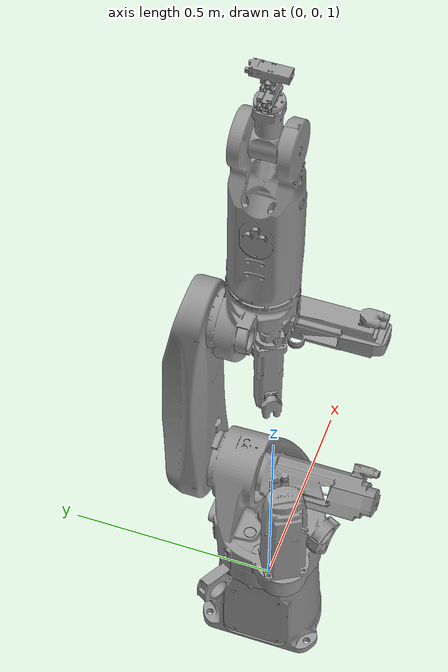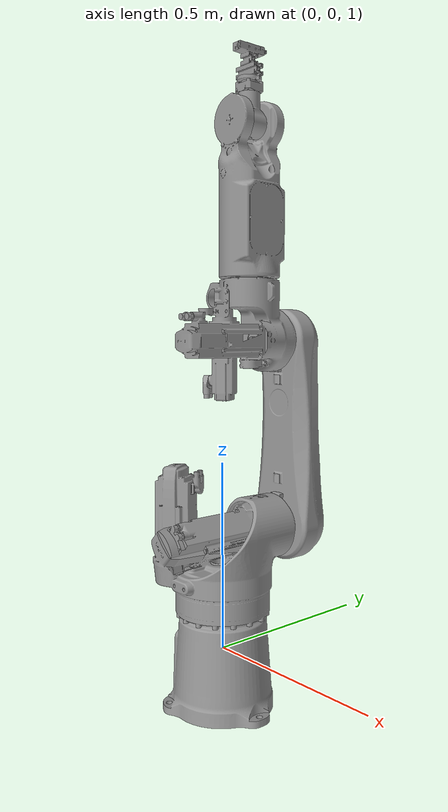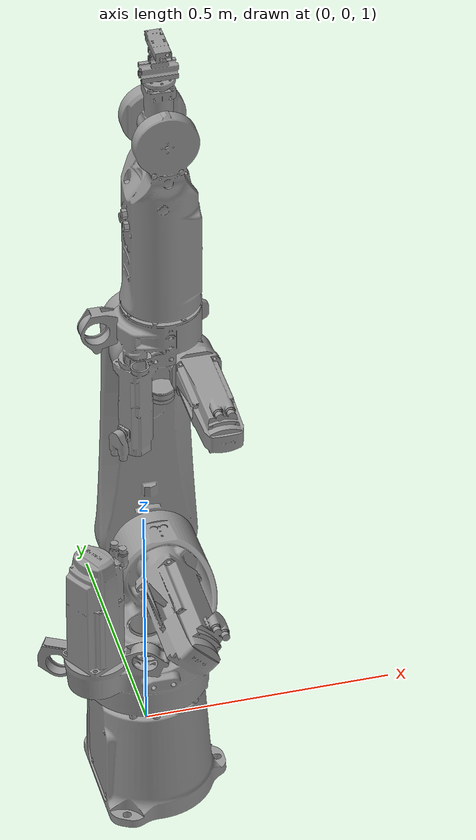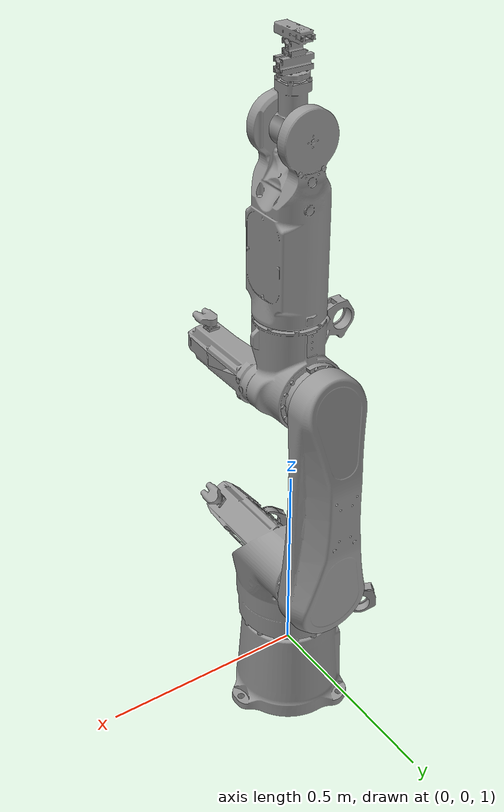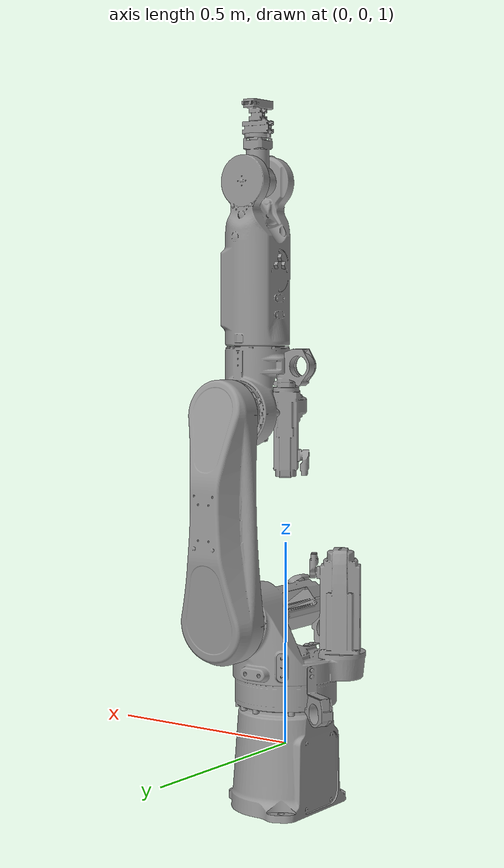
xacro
<?xml version="1.0" encoding="UTF-8"?>
<robot xmlns:xacro="http://wiki.ros.org/xacro" name="orba6">

  <!-- set prefix if multiple robots are used -->
  <xacro:arg name="prefix" default=""/>

  <xacro:arg name="hardware" default="mock"/>  <!-- mock, motion_app, motor_direct -->

  <xacro:include filename="$(find pssbl_robot_descriptions)/urdf/orba6_1215/orba6_1215_macro.xacro"/>
  <xacro:include filename="$(find pssbl_robot_descriptions)/urdf/orba6_1215/orba6_1215_gripper_macro.xacro"/>
  <xacro:include filename="$(find pssbl_robot_descriptions)/urdf/orba6_1215/orba6_macro.ros2_control.xacro"/>
  <xacro:include filename="$(find pssbl_robot_descriptions)/urdf/gripper_macro.ros2_control.xacro"/>

  <!-- create link fixed to the "world" -->
  <link name="world"/>

  <xacro:orba6_1215 prefix="$(arg prefix)" parent="world">
    <origin xyz="0 0 0.845" rpy="0 0 0"/>
  </xacro:orba6_1215>

  <xacro:orba6_ros2_control
    name="orba6"
    prefix="$(arg prefix)"
    hardware="$(arg hardware)"
  />
  <xacro:orba6_ios_ros2_control
    name="orba6_ios"
    prefix="$(arg prefix)"
    hardware="$(arg hardware)"
  />

  <xacro:orba6_1215_gripper prefix="" parent="$(arg prefix)flange">
    <origin xyz="0 0 0" rpy="0 0 0"/>
  </xacro:orba6_1215_gripper>

  <xacro:gripper_ros2_control
    name="orba6_gripper"
    prefix=""
    mock="$(eval hardware == 'mock')"
  />

</robot>

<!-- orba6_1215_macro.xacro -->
<robot xmlns:xacro="http://wiki.ros.org/xacro">

  <xacro:include filename="$(find pssbl_robot_descriptions)/urdf/common/inertials.xacro"/>
  <xacro:include filename="$(find pssbl_robot_descriptions)/urdf/common/materials.xacro"/>

  <xacro:macro name="orba6_1215" params="prefix parent *origin">
    <!-- LINKS -->
    <!-- base link -->
    <link name="${prefix}base_link">
      <!-- Default inertial for Gazebo - copy and edit block from 'common.xacro'
           to get more realistic behavior -->
      <xacro:default_inertial/>
      <visual>
        <origin xyz="0 0 0" rpy="0 0 0"/>
        <geometry>
          <mesh filename="package://pssbl_robot_descriptions/meshes/orba6_1215/visual/base_link.stl" />
        </geometry>
        <material name="grey"/>
      </visual>
      <collision>
        <origin xyz="0 0 0" rpy="0 0 0"/>
        <geometry>
          <mesh filename="package://pssbl_robot_descriptions/meshes/orba6_1215/collision/base_link.stl" />
        </geometry>
      </collision>
    </link>

    <!-- link 1 -->
    <link name="${prefix}link1">
      <!-- Default inertial for Gazebo - copy and edit block from 'common.xacro'
           to get more realistic behavior -->
      <xacro:default_inertial/>
      <visual>
        <origin xyz="0 0 0" rpy="0 0 0"/>
        <geometry>
          <mesh filename="package://pssbl_robot_descriptions/meshes/orba6_1215/visual/link1.stl" />
        </geometry>
        <material name="grey"/>
      </visual>
      <collision>
        <origin xyz="0 0 0" rpy="0 0 0"/>
        <geometry>
          <mesh filename="package://pssbl_robot_descriptions/meshes/orba6_1215/collision/link1.stl" />
        </geometry>
        <material name="grey"/>
      </collision>
    </link>

    <!-- link 2 -->
    <link name="${prefix}link2">
      <!-- Default inertial for Gazebo - copy and edit block from 'common.xacro'
           to get more realistic behavior-->
      <xacro:default_inertial/>
      <visual>
        <origin xyz="0 0 0" rpy="0 0 0"/>
        <geometry>
          <mesh filename="package://pssbl_robot_descriptions/meshes/orba6_1215/visual/link2.stl" />
        </geometry>
        <material name="grey"/>
      </visual>
      <collision>
        <origin xyz="0 0 0" rpy="0 0 0"/>
        <geometry>
          <mesh filename="package://pssbl_robot_descriptions/meshes/orba6_1215/collision/link2.stl" />
        </geometry>
      </collision>
    </link>

    <!-- link 3 -->
    <link name="${prefix}link3">
      <!-- Default inertial for Gazebo - copy and edit block from 'common.xacro'
           to get more realistic behavior-->
      <xacro:default_inertial/>
      <visual>
        <origin xyz="0 0 0" rpy="0 0 0"/>
        <geometry>
          <mesh filename="package://pssbl_robot_descriptions/meshes/orba6_1215/visual/link3.stl" />
        </geometry>
        <material name="grey"/>
      </visual>
      <collision>
        <origin xyz="0 0 0" rpy="0 0 0"/>
        <geometry>
          <mesh filename="package://pssbl_robot_descriptions/meshes/orba6_1215/collision/link3.stl" />
        </geometry>
      </collision>
    </link>

    <!-- link 4 -->
    <link name="${prefix}link4">
      <!-- Default inertial for Gazebo - copy and edit block from 'common.xacro'
           to get more realistic behavior-->
      <xacro:default_inertial/>
      <visual>
        <origin xyz="-0.39 0 0" rpy="0 0 0"/>
        <geometry>
          <mesh filename="package://pssbl_robot_descriptions/meshes/orba6_1215/visual/link4.stl" />
        </geometry>
        <material name="grey"/>
      </visual>
      <collision>
        <origin xyz="-0.39 0 0" rpy="0 0 0"/>
        <geometry>
          <mesh filename="package://pssbl_robot_descriptions/meshes/orba6_1215/collision/link4.stl" />
        </geometry>
      </collision>
    </link>

    <!-- link 5 -->
    <link name="${prefix}link5">
      <!-- Default inertial for Gazebo - copy and edit block from 'common.xacro'
           to get more realistic behavior-->
      <xacro:default_inertial/>
      <visual>
        <origin xyz="0 0 0" rpy="0 0 0"/>
        <geometry>
          <mesh filename="package://pssbl_robot_descriptions/meshes/orba6_1215/visual/link5.stl" />
        </geometry>
        <material name="grey"/>
      </visual>
      <collision>
        <origin xyz="0 0 0" rpy="0 0 0"/>
        <geometry>
          <mesh filename="package://pssbl_robot_descriptions/meshes/orba6_1215/collision/link5.stl" />
        </geometry>
      </collision>
    </link>
    <!-- link 6 -->
    <link name="${prefix}link6">
      <!-- Default inertial for Gazebo - copy and edit block from 'common.xacro'
           to get more realistic behavior-->
      <xacro:default_inertial/>
      <visual>
        <origin xyz="0 0 0" rpy="0 0 0"/>
        <geometry>
          <mesh filename="package://pssbl_robot_descriptions/meshes/orba6_1215/visual/flange.stl" />
        </geometry>
        <material name="grey"/>
      </visual>
      <collision>
        <origin xyz="0 0 0" rpy="0 0 0"/>
        <geometry>
          <mesh filename="package://pssbl_robot_descriptions/meshes/orba6_1215/collision/flange.stl" />
        </geometry>
      </collision>
    </link>

    <!-- All-zero tool frame. This frame should correspond to the TOOL frame of the robot's controller.) -->
    <!-- This frame should correspond to the BASE coordinate system of robot's controller.) -->
    <link name="${prefix}base"/>
    <!-- All-zero tool frame. This frame should correspond to the TOOL frame of the robot's controller.) -->
    <link name="${prefix}tool0"/>
    <!-- Frame for mounting EEF models to a manipulator. z+ axis points along the tool direction (towards end-effector)
          x+ axis points forward (REP 103). -->
    <link name="${prefix}flange"/>

    <!-- JOINTS -->
    <!-- base_joint fixes base_link to the environment -->
    <joint name="${prefix}base_joint" type="fixed">
      <xacro:insert_block name="origin"/>
      <parent link="${parent}"/>
      <child link="${prefix}base_link"/>
    </joint>

    <!-- joint 1 -->
    <joint name="${prefix}joint1" type="revolute">
      <origin xyz="0 0 0.255" rpy="0 0 0"/>
      <parent link="${prefix}base_link"/>
      <child link="${prefix}link1"/>
      <axis xyz="0 0 -1"/>
      <limit lower="${radians(-185)}" upper="${radians(185)}" velocity="${radians(300)}" effort="${radians(845)}"/>
    </joint>

    <!-- joint 2 -->
    <joint name="${prefix}joint2" type="revolute">
      <origin xyz="0.05 0.145 0.223" rpy="0 0 0"/>
      <parent link="${prefix}link1"/>
      <child link="${prefix}link2"/>
      <axis xyz="0 1 0"/>
      <limit lower="${radians(-130)}" upper="${radians(147.5)}" velocity="${radians(285)}" effort="${radians(560)}"/>
    </joint>

    <!-- joint 3 -->
    <!-- rotated to -90 degrees around Y with respect to the data sheet -->
    <joint name="${prefix}joint3" type="revolute">
      <origin xyz="0 0 0.5" rpy="0 ${-pi/2} 0"/>
      <parent link="${prefix}link2"/>
      <child link="${prefix}link3"/>
      <axis xyz="0 1 0"/>
      <limit lower="${radians(-185 + 90)}" upper="${radians(70 + 90)}" velocity="${radians(366)}" effort="${radians(1084)}"/>
    </joint>
    <!-- joint 4 -->
    <joint name="${prefix}joint4" type="revolute">
      <origin xyz="0.55 -0.095 0" rpy="0 0 0"/>
      <parent link="${prefix}link3"/>
      <child link="${prefix}link4"/>
      <axis xyz="1 0 0"/>
      <limit lower="${radians(-185)}" upper="${radians(185)}" velocity="${radians(936)}" effort="${radians(3082)}"/>
    </joint>
    <!-- joint 5-->
    <joint name="${prefix}joint5" type="revolute">
      <origin xyz="0.0 0 0" rpy="0 0 0"/>
      <parent link="${prefix}link4"/>
      <child link="${prefix}link5"/>
      <axis xyz="0 1 0"/>
      <limit lower="${radians(-140)}" upper="${radians(140)}" velocity="${radians(900)}" effort="${radians(2042)}"/>
    </joint>
    <!-- joint 6-->
    <joint name="${prefix}joint6" type="revolute">
      <origin xyz="0.097 0 0" rpy="0 0 0"/>
      <parent link="${prefix}link5"/>
      <child link="${prefix}link6"/>
      <axis xyz="1 0 0"/>
      <limit lower="${radians(-360)}" upper="${radians(360)}" velocity="${radians(900)}" effort="${radians(6000)}"/>
    </joint>

    <!-- END JOINTS -->

    <joint name="${prefix}base_link-base_joint" type="fixed">
      <origin xyz="0 0 0" rpy="0 0 0"/>
      <parent link="${prefix}base_link"/>
      <child link="${prefix}base"/>
    </joint>

    <joint name="${prefix}link6-tool0" type="fixed">
      <origin xyz="0.017 0 0" rpy="0 ${pi/2} 0"/>
      <parent link="${prefix}link6"/>
      <child link="${prefix}tool0"/>
    </joint>

    <joint name="${prefix}tool0-flange" type="fixed">
      <origin xyz="0 0 0" rpy="0 0 0"/>
      <parent link="${prefix}tool0"/>
      <child link="${prefix}flange"/>
    </joint>

  </xacro:macro>
</robot>

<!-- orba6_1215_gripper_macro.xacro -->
<robot xmlns:xacro="http://wiki.ros.org/xacro">

  <xacro:include filename="$(find pssbl_robot_descriptions)/urdf/common/inertials.xacro"/>

  <xacro:macro name="orba6_1215_gripper" params="prefix parent *origin">
    <!-- LINKS -->
    <!-- base link -->
    <link name="${prefix}mount_link">
      <!-- Default inertial for Gazebo - copy and edit block from 'common.xacro'
           to get more realistic behavior -->
      <xacro:default_inertial/>
      <visual>
        <origin xyz="0 0 0" rpy="0 0 0"/>
        <geometry>
          <mesh filename="package://pssbl_robot_descriptions/meshes/orba6_1215_gripper/visual/mount_link.stl" />
        </geometry>
        <material name="grey"/>
      </visual>
      <collision>
        <origin xyz="0 0 0" rpy="0 0 0"/>
        <geometry>
          <mesh filename="package://pssbl_robot_descriptions/meshes/orba6_1215_gripper/collision/mount_link.stl"/>
        </geometry>
      </collision>
    </link>

    <!-- link 1 - All zero tool frame -->
    <link name="${prefix}gripper_base"/>

    <!-- link 2 - All zero tool frame -->
    <link name="${prefix}gripper_tcp"/>

    <!-- JOINTS -->
    <!-- mount_joint fixes mount_link to the environment -->
    <joint name="${prefix}mount_joint" type="fixed">
      <xacro:insert_block name="origin"/>
      <parent link="${parent}"/>
      <child link="${prefix}mount_link"/>
    </joint>

    <!-- joint 1 -->
    <joint name="${prefix}gripper_base_joint" type="fixed">
      <origin xyz="0 0 0.01" rpy="0 0 0"/>
      <parent link="${prefix}mount_link"/>
      <child link="${prefix}gripper_base"/>
    </joint>

    <!-- joint 2 -->
    <joint name="${prefix}gripper_tcp_joint" type="fixed">
      <origin xyz="0 0 0.083" rpy="0 0 0"/>
      <parent link="${prefix}mount_link"/>
      <child link="${prefix}gripper_tcp"/>
    </joint>

  </xacro:macro>

</robot>
